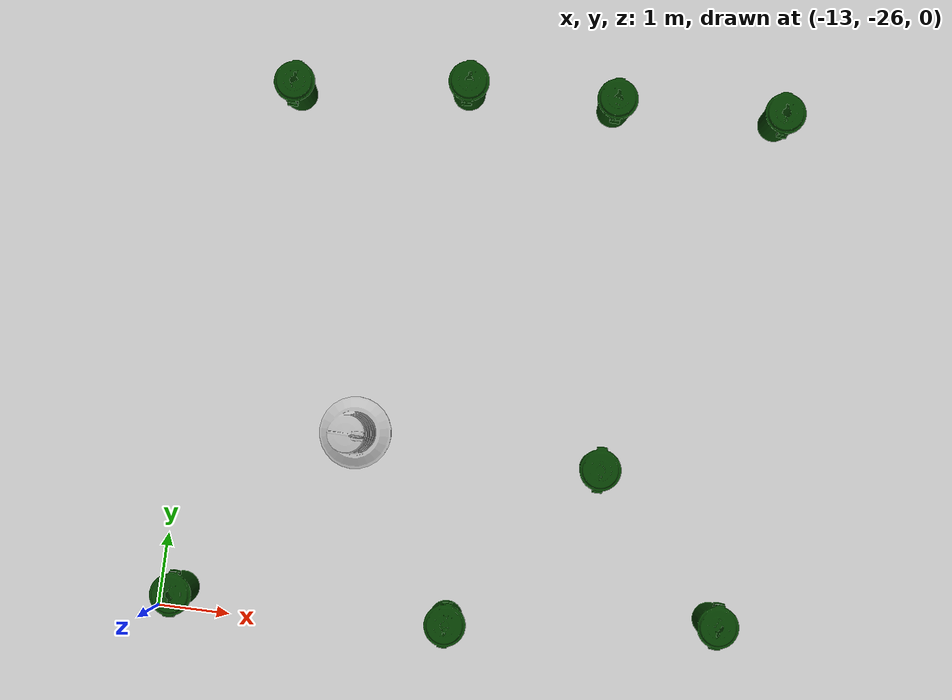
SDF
<sdf version="1.6">
 <world name="default">
  <model name="ground_plane">
   <static>1</static>
   <link name="link">
    <collision name="collision">
     <geometry><plane><normal>0 0 1</normal><size>100 100</size></plane></geometry>
     <surface>
      <contact><collide_bitmask>65535</collide_bitmask></contact>
      <friction><ode><mu>100</mu><mu2>50</mu2></ode></friction>
     </surface>
    </collision>
    <visual name="visual">
     <cast_shadows>0</cast_shadows>
     <geometry><plane><normal>0 0 1</normal><size>100 100</size></plane></geometry>
     <material>
      <script><uri>file://media/materials/scripts/gazebo.material</uri><name>Gazebo/Grey</name></script>
     </material>
    </visual>
   </link>
  </model>
  <model name="first_2015_trash_can_clone_0">
   <link name="link">
    <inertial>
     <pose>0 0 0.3683 0 -0 0</pose>
     <mass>4.83076</mass>
     <inertia>
      <ixx>0.281534</ixx>
      <ixy>0</ixy>
      <ixz>0</ixz>
      <iyy>0.281534</iyy>
      <iyz>0</iyz>
      <izz>0.126223</izz>
     </inertia>
    </inertial>
    <visual name="visual">
     <geometry><mesh><uri>model://first_2015_trash_can/meshes/trash_can.dae</uri></mesh></geometry>
    </visual>
    <collision name="collision">
     <geometry><mesh><uri>model://first_2015_trash_can/meshes/trash_can.dae</uri></mesh></geometry>
    </collision>
   </link>
   <pose>-12.004 -18.5766 0.024999 -2.7e-05 8e-06 -0.000582</pose>
  </model>
  <model name="first_2015_trash_can_clone_1">
   <link name="link">
    <inertial>
     <pose>0 0 0.3683 0 -0 0</pose>
     <mass>4.83076</mass>
     <inertia>
      <ixx>0.281534</ixx>
      <ixy>0</ixy>
      <ixz>0</ixz>
      <iyy>0.281534</iyy>
      <iyz>0</iyz>
      <izz>0.126223</izz>
     </inertia>
    </inertial>
    <visual name="visual">
     <geometry><mesh><uri>model://first_2015_trash_can/meshes/trash_can.dae</uri></mesh></geometry>
    </visual>
    <collision name="collision">
     <geometry><mesh><uri>model://first_2015_trash_can/meshes/trash_can.dae</uri></mesh></geometry>
    </collision>
   </link>
   <pose>-9.62697 -18.2595 0.024994 -1.2e-05 2.8e-05 -0.000518</pose>
  </model>
  <model name="first_2015_trash_can_clone_2">
   <link name="link">
    <inertial>
     <pose>0 0 0.3683 0 -0 0</pose>
     <mass>4.83076</mass>
     <inertia>
      <ixx>0.281534</ixx>
      <ixy>0</ixy>
      <ixz>0</ixz>
      <iyy>0.281534</iyy>
      <iyz>0</iyz>
      <izz>0.126223</izz>
     </inertia>
    </inertial>
    <visual name="visual">
     <geometry><mesh><uri>model://first_2015_trash_can/meshes/trash_can.dae</uri></mesh></geometry>
    </visual>
    <collision name="collision">
     <geometry><mesh><uri>model://first_2015_trash_can/meshes/trash_can.dae</uri></mesh></geometry>
    </collision>
   </link>
   <pose>-7.56762 -18.2359 0.024998 1e-06 1.1e-05 -0.000526</pose>
  </model>
  <model name="first_2015_trash_can_clone_3">
   <link name="link">
    <inertial>
     <pose>0 0 0.3683 0 -0 0</pose>
     <mass>4.83076</mass>
     <inertia>
      <ixx>0.281534</ixx>
      <ixy>0</ixy>
      <ixz>0</ixz>
      <iyy>0.281534</iyy>
      <iyz>0</iyz>
      <izz>0.126223</izz>
     </inertia>
    </inertial>
    <visual name="visual">
     <geometry><mesh><uri>model://first_2015_trash_can/meshes/trash_can.dae</uri></mesh></geometry>
    </visual>
    <collision name="collision">
     <geometry><mesh><uri>model://first_2015_trash_can/meshes/trash_can.dae</uri></mesh></geometry>
    </collision>
   </link>
   <pose>-5.26226 -18.134 0.024992 1.2e-05 1.2e-05 -0.000466</pose>
  </model>
  <model name="first_2015_trash_can_clone_5">
   <link name="link">
    <inertial>
     <pose>0 0 0.3683 0 -0 0</pose>
     <mass>4.83076</mass>
     <inertia>
      <ixx>0.281534</ixx>
      <ixy>0</ixy>
      <ixz>0</ixz>
      <iyy>0.281534</iyy>
      <iyz>0</iyz>
      <izz>0.126223</izz>
     </inertia>
    </inertial>
    <visual name="visual">
     <geometry><mesh><uri>model://first_2015_trash_can/meshes/trash_can.dae</uri></mesh></geometry>
    </visual>
    <collision name="collision">
     <geometry><mesh><uri>model://first_2015_trash_can/meshes/trash_can.dae</uri></mesh></geometry>
    </collision>
   </link>
   <pose>-12.6825 -25.7066 0.024995 2e-06 2.2e-05 -0.000475</pose>
  </model>
  <model name="first_2015_trash_can_clone_6">
   <link name="link">
    <inertial>
     <pose>0 0 0.3683 0 -0 0</pose>
     <mass>4.83076</mass>
     <inertia>
      <ixx>0.281534</ixx>
      <ixy>0</ixy>
      <ixz>0</ixz>
      <iyy>0.281534</iyy>
      <iyz>0</iyz>
      <izz>0.126223</izz>
     </inertia>
    </inertial>
    <visual name="visual">
     <geometry><mesh><uri>model://first_2015_trash_can/meshes/trash_can.dae</uri></mesh></geometry>
    </visual>
    <collision name="collision">
     <geometry><mesh><uri>model://first_2015_trash_can/meshes/trash_can.dae</uri></mesh></geometry>
    </collision>
   </link>
   <pose>-8.97767 -25.63 0.025 -1.1e-05 2.2e-05 -0.000558</pose>
  </model>
  <model name="first_2015_trash_can_clone_7">
   <link name="link">
    <inertial>
     <pose>0 0 0.3683 0 -0 0</pose>
     <mass>4.83076</mass>
     <inertia>
      <ixx>0.281534</ixx>
      <ixy>0</ixy>
      <ixz>0</ixz>
      <iyy>0.281534</iyy>
      <iyz>0</iyz>
      <izz>0.126223</izz>
     </inertia>
    </inertial>
    <visual name="visual">
     <geometry><mesh><uri>model://first_2015_trash_can/meshes/trash_can.dae</uri></mesh></geometry>
    </visual>
    <collision name="collision">
     <geometry><mesh><uri>model://first_2015_trash_can/meshes/trash_can.dae</uri></mesh></geometry>
    </collision>
   </link>
   <pose>-5.33888 -25.1753 0.025002 2.9e-05 -1.2e-05 -0.000482</pose>
  </model>
  <model name="first_2015_trash_can_clone_8">
   <link name="link">
    <inertial>
     <pose>0 0 0.3683 0 -0 0</pose>
     <mass>4.83076</mass>
     <inertia>
      <ixx>0.281534</ixx>
      <ixy>0</ixy>
      <ixz>0</ixz>
      <iyy>0.281534</iyy>
      <iyz>0</iyz>
      <izz>0.126223</izz>
     </inertia>
    </inertial>
    <visual name="visual">
     <geometry><mesh><uri>model://first_2015_trash_can/meshes/trash_can.dae</uri></mesh></geometry>
    </visual>
    <collision name="collision">
     <geometry><mesh><uri>model://first_2015_trash_can/meshes/trash_can.dae</uri></mesh></geometry>
    </collision>
   </link>
   <pose>-7.16722 -23.2997 0.024987 2.3e-05 1.1e-05 -0.000491</pose>
  </model>
  <model name="Construction Barrel_clone_0_clone_13_clone_0">
   <link name="link">
    <inertial>
     <pose>0 0 0.4 0 -0 0</pose>
     <mass>500</mass>
     <inertia><ixx>51.2096</ixx><iyy>51.2096</iyy><izz>25</izz><ixy>0</ixy><ixz>0</ixz><iyz>0</iyz></inertia>
    </inertial>
    <collision name="collision">
     <geometry><mesh><uri>model://construction_barrel/meshes/construction_barrel.dae</uri></mesh></geometry>
    </collision>
    <visual name="visual">
     <geometry><mesh><uri>model://construction_barrel/meshes/construction_barrel.dae</uri></mesh></geometry>
    </visual>
   </link>
   <pose>-10.5916 -23.2538 0.024999 3e-06 0 -0.00824</pose>
  </model>
 </world>
</sdf>
